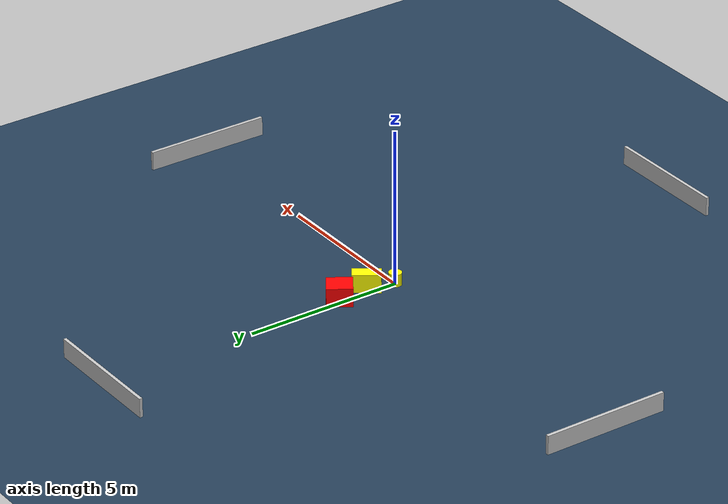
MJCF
<?xml version="1.0" ?>
<mujoco model="generated_environment">
  <option timestep="0.01" integrator="RK4" cone="elliptic"/>
  <default>
    <geom density="1"/>
  </default>
  <asset>
    <texture builtin="gradient" height="3072" name="skybox" rgb1="0.3 0.5 0.7" rgb2="0 0 0" type="skybox" width="512"/>
    <texture builtin="checker" height="300" name="groundplane" rgb1="0.2 0.3 0.4" rgb2="0.1 0.2 0.3" type="2d" width="300"/>
    <material name="groundplane" reflectance="0.2" texrepeat="5 5" texture="groundplane"/>
  </asset>
  <worldbody>
    <light dir="0 0 -1" directional="true" pos="0 0 1.5"/>
    <geom condim="3" friction="0.5 0.005 0.001" material="groundplane" name="floor" pos="0 0 0" size="0 0 0.05" type="plane"/>
    <body name="walls">
      <geom name="wall_1" condim="4" pos="-10.0 0.0 0.3" rgba="0.800000011920929 0.800000011920929 0.800000011920929 1.0" size="0.05 2.0 0.3" type="box"/>
      <geom name="wall_2" condim="4" pos="10.0 0.0 0.3" rgba="0.800000011920929 0.800000011920929 0.800000011920929 1.0" size="0.05 2.0 0.3" type="box"/>
      <geom name="wall_3" condim="4" pos="0.0 -10.0 0.3" rgba="0.800000011920929 0.800000011920929 0.800000011920929 1.0" size="2.0 0.05 0.3" type="box"/>
      <geom name="wall_4" condim="4" pos="0.0 10.0 0.3" rgba="0.800000011920929 0.800000011920929 0.800000011920929 1.0" size="2.0 0.05 0.3" type="box"/>
    </body>
    <body name="robot">
      <joint name="joint_x" type="slide" pos="0 0 0" axis="1 0 0"/>
      <joint name="joint_y" type="slide" pos="0 0 0" axis="0 1 0"/>
      <geom name="robot" type="cylinder" pos="0.0 0.0 0.2" size="0.2 0.2 0.0" mass="5.0" friction="1.0 0.005 0.0001" condim="4" rgba="1.0 1.0 0.0 1.0"/>
    </body>
    <body name="obstacle_1_movable">
      <geom name="obstacle_1_movable" condim="4" pos="0.21041661194220945 0.8719921851566613 0.3" euler="0 0 54.26141840776651" friction="0.0 0.005 0.001" rgba="1.0 1.0 0.0 1.0" size="0.43762336015675507 0.20370282078951638 0.3" type="box" mass="0.1"/>
      <joint type="free"/>
    </body>
    <body name="obstacle_2_static">
      <geom name="obstacle_2_static" condim="4" pos="0.12048852852149985 1.8874311185548216 0.3" euler="0 0 326.56522181136796" friction="0.0 0.005 0.001" rgba="1.0 0.0 0.0 1.0" size="0.3525182279363204 0.39476439368245453 0.3" type="box"/>
    </body>
  </worldbody>
  <actuator>
    <motor name="actuator_x" joint="joint_x" gear="1" ctrlrange="-1 1"/>
    <motor name="actuator_y" joint="joint_y" gear="1" ctrlrange="-1 1"/>
  </actuator>
</mujoco>
